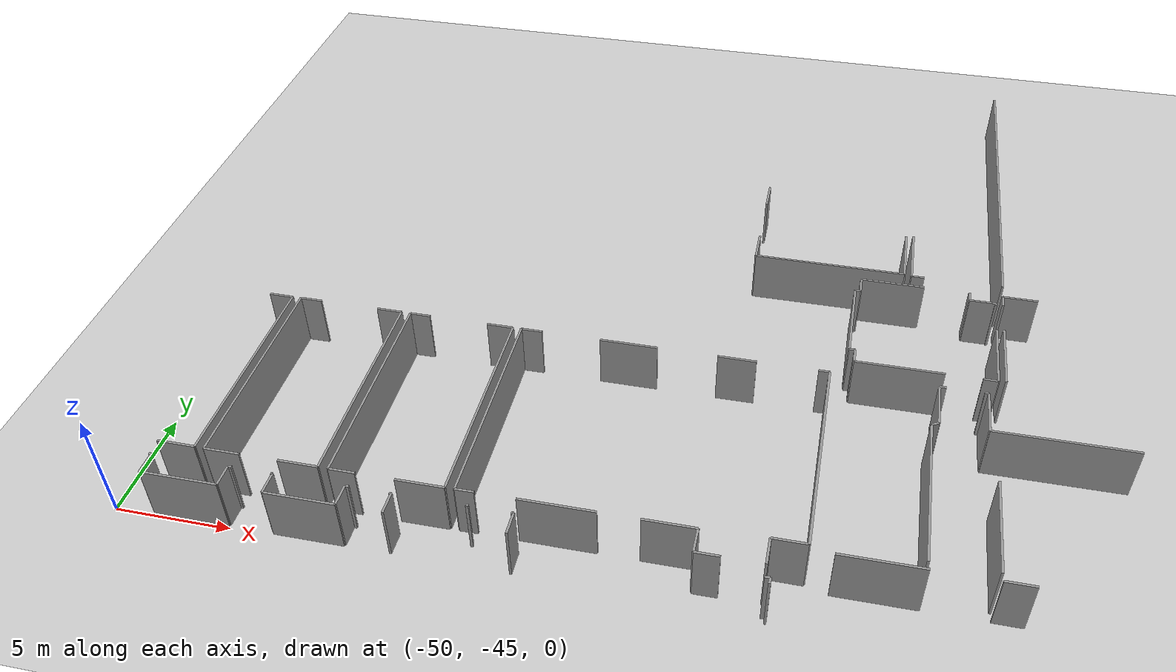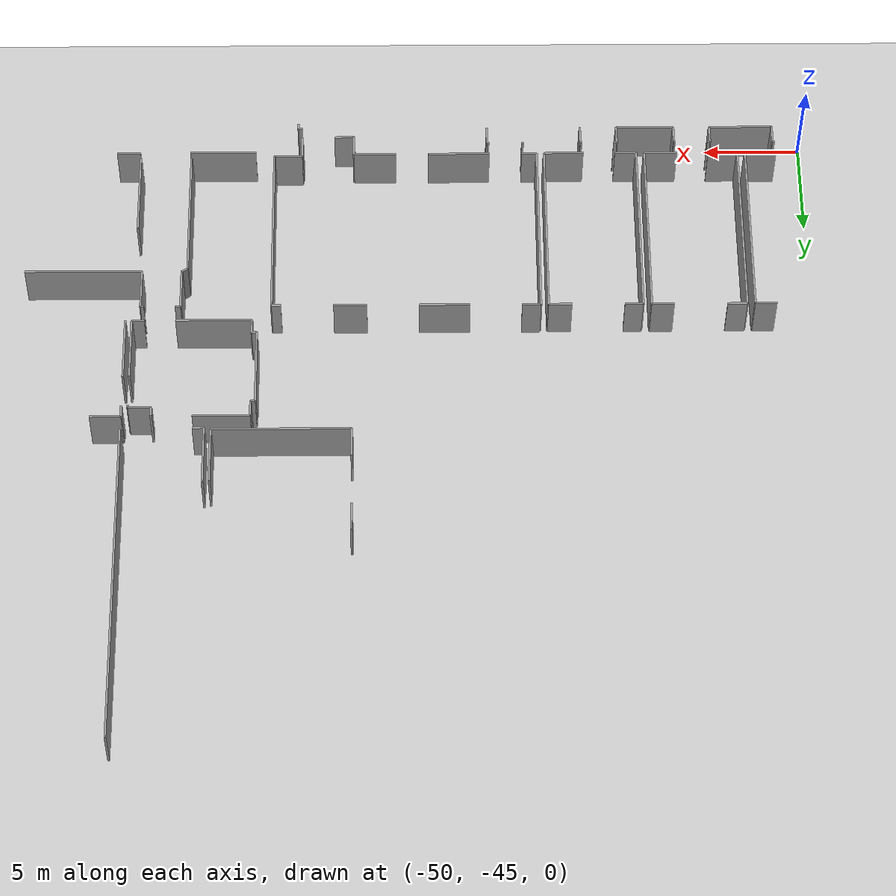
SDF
<sdf version="1.6">
 <world name="default">
  <model name="ground_plane">
   <static>1</static>
   <link name="link">
    <collision name="collision">
     <geometry><plane><normal>0 0 1</normal><size>100 100</size></plane></geometry>
     <surface><friction><ode><mu>100</mu><mu2>50</mu2></ode></friction></surface>
    </collision>
    <visual name="visual">
     <cast_shadows>0</cast_shadows>
     <geometry><plane><normal>0 0 1</normal><size>100 100</size></plane></geometry>
     <material>
      <script><uri>file://media/materials/scripts/gazebo.material</uri><name>Gazebo/Grey</name></script>
     </material>
    </visual>
   </link>
  </model>
  <model name="0510045926_A-40">
   <static>1</static>
   <link name="Wall_1076">
    <collision name="Wall_1076_Collision">
     <geometry><box><size>1.58367336578 0.1 2.5</size></box></geometry>
     <pose>0.791836682891 0 1.25 0 0 0</pose>
    </collision>
    <visual name="Wall_1076_Visual">
     <pose>0.791836682891 0 1.25 0 0 0</pose>
     <geometry><box><size>1.58367336578 0.1 2.5</size></box></geometry>
     <material>
      <script><uri>file://media/materials/scripts/gazebo.material</uri><name>Gazebo/Grey</name></script>
      <ambient>1 1 1 1</ambient>
     </material>
    </visual>
    <pose>107.652246753 -127.228241625 0 0 0 1.57079632679</pose>
   </link>
   <link name="Wall_1077">
    <collision name="Wall_1077_Collision">
     <geometry><box><size>1.52681444064 0.1 2.5</size></box></geometry>
     <pose>0.763407220322 0 1.25 0 0 0</pose>
    </collision>
    <visual name="Wall_1077_Visual">
     <pose>0.763407220322 0 1.25 0 0 0</pose>
     <geometry><box><size>1.52681444064 0.1 2.5</size></box></geometry>
     <material>
      <script><uri>file://media/materials/scripts/gazebo.material</uri><name>Gazebo/Grey</name></script>
      <ambient>1 1 1 1</ambient>
     </material>
    </visual>
    <pose>107.652246753 -122.896809935 0 0 0 1.57079632679</pose>
   </link>
   <link name="Wall_1080">
    <collision name="Wall_1080_Collision">
     <geometry><box><size>2.99524694923 0.1 2.5</size></box></geometry>
     <pose>1.49762347461 0 1.25 0 0 0</pose>
    </collision>
    <visual name="Wall_1080_Visual">
     <pose>1.49762347461 0 1.25 0 0 0</pose>
     <geometry><box><size>2.99524694923 0.1 2.5</size></box></geometry>
     <material>
      <script><uri>file://media/materials/scripts/gazebo.material</uri><name>Gazebo/Grey</name></script>
      <ambient>1 1 1 1</ambient>
     </material>
    </visual>
    <pose>114.702245801 -124.222333627 0 0 0 -1.57079632679</pose>
   </link>
   <link name="Wall_1081">
    <collision name="Wall_1081_Collision">
     <geometry><box><size>7.05000710897 0.1 2.5</size></box></geometry>
     <pose>3.52500355448 0 1.25 0 0 0</pose>
    </collision>
    <visual name="Wall_1081_Visual">
     <pose>3.52500355448 0 1.25 0 0 0</pose>
     <geometry><box><size>7.05000710897 0.1 2.5</size></box></geometry>
     <material>
      <script><uri>file://media/materials/scripts/gazebo.material</uri><name>Gazebo/Grey</name></script>
      <ambient>1 1 1 1</ambient>
     </material>
    </visual>
    <pose>114.702245801 -127.217580577 0 0 0 -3.14008044908</pose>
   </link>
   <link name="Wall_1127">
    <collision name="Wall_1127_Collision">
     <geometry><box><size>0.589149844844 0.1 2.5</size></box></geometry>
     <pose>0.294574922422 0 1.25 0 0 0</pose>
    </collision>
    <visual name="Wall_1127_Visual">
     <pose>0.294574922422 0 1.25 0 0 0</pose>
     <geometry><box><size>0.589149844844 0.1 2.5</size></box></geometry>
     <material>
      <script><uri>file://media/materials/scripts/gazebo.material</uri><name>Gazebo/Grey</name></script>
      <ambient>1 1 1 1</ambient>
     </material>
    </visual>
    <pose>115.628995513 -127.302107461 0 0 0 3.14159265359</pose>
   </link>
   <link name="Wall_1128">
    <collision name="Wall_1128_Collision">
     <geometry><box><size>3.15719335207 0.1 2.5</size></box></geometry>
     <pose>1.57859667604 0 1.25 0 0 0</pose>
    </collision>
    <visual name="Wall_1128_Visual">
     <pose>1.57859667604 0 1.25 0 0 0</pose>
     <geometry><box><size>3.15719335207 0.1 2.5</size></box></geometry>
     <material>
      <script><uri>file://media/materials/scripts/gazebo.material</uri><name>Gazebo/Grey</name></script>
      <ambient>1 1 1 1</ambient>
     </material>
    </visual>
    <pose>115.039845669 -127.302107461 0 0 0 1.57079632679</pose>
   </link>
   <link name="Wall_1136">
    <collision name="Wall_1136_Collision">
     <geometry><box><size>3.42575023956 0.1 2.5</size></box></geometry>
     <pose>1.71287511978 0 1.25 0 0 0</pose>
    </collision>
    <visual name="Wall_1136_Visual">
     <pose>1.71287511978 0 1.25 0 0 0</pose>
     <geometry><box><size>3.42575023956 0.1 2.5</size></box></geometry>
     <material>
      <script><uri>file://media/materials/scripts/gazebo.material</uri><name>Gazebo/Grey</name></script>
      <ambient>1 1 1 1</ambient>
     </material>
    </visual>
    <pose>119.211615466 -133.77742523 0 0 0 1.57079632679</pose>
   </link>
   <link name="Wall_1137">
    <collision name="Wall_1137_Collision">
     <geometry><box><size>0.63331704562 0.1 2.5</size></box></geometry>
     <pose>0.31665852281 0 1.25 0 0 0</pose>
    </collision>
    <visual name="Wall_1137_Visual">
     <pose>0.31665852281 0 1.25 0 0 0</pose>
     <geometry><box><size>0.63331704562 0.1 2.5</size></box></geometry>
     <material>
      <script><uri>file://media/materials/scripts/gazebo.material</uri><name>Gazebo/Grey</name></script>
      <ambient>1 1 1 1</ambient>
     </material>
    </visual>
    <pose>119.211615466 -128.630423332 0 0 0 1.57079632679</pose>
   </link>
   <link name="Wall_1138">
    <collision name="Wall_1138_Collision">
     <geometry><box><size>1.58215035886 0.1 2.5</size></box></geometry>
     <pose>0.791075179429 0 1.25 0 0 0</pose>
    </collision>
    <visual name="Wall_1138_Visual">
     <pose>0.791075179429 0 1.25 0 0 0</pose>
     <geometry><box><size>1.58215035886 0.1 2.5</size></box></geometry>
     <material>
      <script><uri>file://media/materials/scripts/gazebo.material</uri><name>Gazebo/Grey</name></script>
      <ambient>1 1 1 1</ambient>
     </material>
    </visual>
    <pose>119.211615466 -127.997106287 0 0 0 0.0</pose>
   </link>
   <link name="Wall_1143">
    <collision name="Wall_1143_Collision">
     <geometry><box><size>0.755157599487 0.1 2.5</size></box></geometry>
     <pose>0.377578799744 0 1.25 0 0 0</pose>
    </collision>
    <visual name="Wall_1143_Visual">
     <pose>0.377578799744 0 1.25 0 0 0</pose>
     <geometry><box><size>0.755157599487 0.1 2.5</size></box></geometry>
     <material>
      <script><uri>file://media/materials/scripts/gazebo.material</uri><name>Gazebo/Grey</name></script>
      <ambient>1 1 1 1</ambient>
     </material>
    </visual>
    <pose>112.765742498 -133.783771092 0 0 0 1.57079632679</pose>
   </link>
   <link name="Wall_1144">
    <collision name="Wall_1144_Collision">
     <geometry><box><size>0.257134335557 0.1 2.5</size></box></geometry>
     <pose>0.128567167778 0 1.25 0 0 0</pose>
    </collision>
    <visual name="Wall_1144_Visual">
     <pose>0.128567167778 0 1.25 0 0 0</pose>
     <geometry><box><size>0.257134335557 0.1 2.5</size></box></geometry>
     <material>
      <script><uri>file://media/materials/scripts/gazebo.material</uri><name>Gazebo/Grey</name></script>
      <ambient>1 1 1 1</ambient>
     </material>
    </visual>
    <pose>112.765742498 -133.028613493 0 0 0 3.14159265359</pose>
   </link>
   <link name="Wall_1145">
    <collision name="Wall_1145_Collision">
     <geometry><box><size>4.11288019647 0.1 2.5</size></box></geometry>
     <pose>2.05644009823 0 1.25 0 0 0</pose>
    </collision>
    <visual name="Wall_1145_Visual">
     <pose>2.05644009823 0 1.25 0 0 0</pose>
     <geometry><box><size>4.11288019647 0.1 2.5</size></box></geometry>
     <material>
      <script><uri>file://media/materials/scripts/gazebo.material</uri><name>Gazebo/Grey</name></script>
      <ambient>1 1 1 1</ambient>
     </material>
    </visual>
    <pose>112.508608162 -133.028613493 0 0 0 1.57079632679</pose>
   </link>
   <link name="Wall_1146">
    <collision name="Wall_1146_Collision">
     <geometry><box><size>0.234289231706 0.1 2.5</size></box></geometry>
     <pose>0.117144615853 0 1.25 0 0 0</pose>
    </collision>
    <visual name="Wall_1146_Visual">
     <pose>0.117144615853 0 1.25 0 0 0</pose>
     <geometry><box><size>0.234289231706 0.1 2.5</size></box></geometry>
     <material>
      <script><uri>file://media/materials/scripts/gazebo.material</uri><name>Gazebo/Grey</name></script>
      <ambient>1 1 1 1</ambient>
     </material>
    </visual>
    <pose>112.508608162 -128.915733296 0 0 0 0.0</pose>
   </link>
   <link name="Wall_1147">
    <collision name="Wall_1147_Collision">
     <geometry><box><size>0.890959050151 0.1 2.5</size></box></geometry>
     <pose>0.445479525076 0 1.25 0 0 0</pose>
    </collision>
    <visual name="Wall_1147_Visual">
     <pose>0.445479525076 0 1.25 0 0 0</pose>
     <geometry><box><size>0.890959050151 0.1 2.5</size></box></geometry>
     <material>
      <script><uri>file://media/materials/scripts/gazebo.material</uri><name>Gazebo/Grey</name></script>
      <ambient>1 1 1 1</ambient>
     </material>
    </visual>
    <pose>112.742897394 -128.915733296 0 0 0 1.57079632679</pose>
   </link>
   <link name="Wall_1148">
    <collision name="Wall_1148_Collision">
     <geometry><box><size>2.91122773396 0.1 2.5</size></box></geometry>
     <pose>1.45561386698 0 1.25 0 0 0</pose>
    </collision>
    <visual name="Wall_1148_Visual">
     <pose>1.45561386698 0 1.25 0 0 0</pose>
     <geometry><box><size>2.91122773396 0.1 2.5</size></box></geometry>
     <material>
      <script><uri>file://media/materials/scripts/gazebo.material</uri><name>Gazebo/Grey</name></script>
      <ambient>1 1 1 1</ambient>
     </material>
    </visual>
    <pose>112.742897394 -128.024774246 0 0 0 0.0</pose>
   </link>
   <link name="Wall_1149">
    <collision name="Wall_1149_Collision">
     <geometry><box><size>0.51909152637 0.1 2.5</size></box></geometry>
     <pose>0.259545763185 0 1.25 0 0 0</pose>
    </collision>
    <visual name="Wall_1149_Visual">
     <pose>0.259545763185 0 1.25 0 0 0</pose>
     <geometry><box><size>0.51909152637 0.1 2.5</size></box></geometry>
     <material>
      <script><uri>file://media/materials/scripts/gazebo.material</uri><name>Gazebo/Grey</name></script>
      <ambient>1 1 1 1</ambient>
     </material>
    </visual>
    <pose>117.711961316 -128.024774246 0 0 0 -1.57079632679</pose>
   </link>
   <link name="Wall_1150">
    <collision name="Wall_1150_Collision">
     <geometry><box><size>1.17652284828 0.1 2.5</size></box></geometry>
     <pose>0.588261424138 0 1.25 0 0 0</pose>
    </collision>
    <visual name="Wall_1150_Visual">
     <pose>0.588261424138 0 1.25 0 0 0</pose>
     <geometry><box><size>1.17652284828 0.1 2.5</size></box></geometry>
     <material>
      <script><uri>file://media/materials/scripts/gazebo.material</uri><name>Gazebo/Grey</name></script>
      <ambient>1 1 1 1</ambient>
     </material>
    </visual>
    <pose>117.711961316 -128.543865772 0 0 0 0.0</pose>
   </link>
   <link name="Wall_1151">
    <collision name="Wall_1151_Collision">
     <geometry><box><size>0.12793258156 0.1 2.5</size></box></geometry>
     <pose>0.0639662907801 0 1.25 0 0 0</pose>
    </collision>
    <visual name="Wall_1151_Visual">
     <pose>0.0639662907801 0 1.25 0 0 0</pose>
     <geometry><box><size>0.12793258156 0.1 2.5</size></box></geometry>
     <material>
      <script><uri>file://media/materials/scripts/gazebo.material</uri><name>Gazebo/Grey</name></script>
      <ambient>1 1 1 1</ambient>
     </material>
    </visual>
    <pose>118.888484164 -128.543865772 0 0 0 -1.57079632679</pose>
   </link>
   <link name="Wall_1152">
    <collision name="Wall_1152_Collision">
     <geometry><box><size>3.38285221122 0.1 2.5</size></box></geometry>
     <pose>1.69142610561 0 1.25 0 0 0</pose>
    </collision>
    <visual name="Wall_1152_Visual">
     <pose>1.69142610561 0 1.25 0 0 0</pose>
     <geometry><box><size>3.38285221122 0.1 2.5</size></box></geometry>
     <material>
      <script><uri>file://media/materials/scripts/gazebo.material</uri><name>Gazebo/Grey</name></script>
      <ambient>1 1 1 1</ambient>
     </material>
    </visual>
    <pose>118.888484164 -130.403457226 0 0 0 -1.57079632679</pose>
   </link>
   <link name="Wall_1153">
    <collision name="Wall_1153_Collision">
     <geometry><box><size>0.64067824575 0.1 2.5</size></box></geometry>
     <pose>0.320339122875 0 1.25 0 0 0</pose>
    </collision>
    <visual name="Wall_1153_Visual">
     <pose>0.320339122875 0 1.25 0 0 0</pose>
     <geometry><box><size>0.64067824575 0.1 2.5</size></box></geometry>
     <material>
      <script><uri>file://media/materials/scripts/gazebo.material</uri><name>Gazebo/Grey</name></script>
      <ambient>1 1 1 1</ambient>
     </material>
    </visual>
    <pose>118.888484164 -133.786309437 0 0 0 3.14159265359</pose>
   </link>
   <link name="Wall_1154">
    <collision name="Wall_1154_Collision">
     <geometry><box><size>3.89432953022 0.1 2.5</size></box></geometry>
     <pose>1.94716476511 0 1.25 0 0 0</pose>
    </collision>
    <visual name="Wall_1154_Visual">
     <pose>1.94716476511 0 1.25 0 0 0</pose>
     <geometry><box><size>3.89432953022 0.1 2.5</size></box></geometry>
     <material>
      <script><uri>file://media/materials/scripts/gazebo.material</uri><name>Gazebo/Grey</name></script>
      <ambient>1 1 1 1</ambient>
     </material>
    </visual>
    <pose>116.660071201 -133.786309437 0 0 0 3.14094084818</pose>
   </link>
   <link name="Wall_1155">
    <collision name="Wall_1155_Collision">
     <geometry><box><size>17.2064245509 0.1 2.5</size></box></geometry>
     <pose>8.60321227544 0 1.25 0 0 0</pose>
    </collision>
    <visual name="Wall_1155_Visual">
     <pose>8.60321227544 0 1.25 0 0 0</pose>
     <geometry><box><size>17.2064245509 0.1 2.5</size></box></geometry>
     <material>
      <script><uri>file://media/materials/scripts/gazebo.material</uri><name>Gazebo/Grey</name></script>
      <ambient>1 1 1 1</ambient>
     </material>
    </visual>
    <pose>119.226591701 -127.236618163 0 0 0 1.57079632679</pose>
   </link>
   <link name="Wall_1380">
    <collision name="Wall_1380_Collision">
     <geometry><box><size>1.1064645298 0.1 2.5</size></box></geometry>
     <pose>0.553232264902 0 1.25 0 0 0</pose>
    </collision>
    <visual name="Wall_1380_Visual">
     <pose>0.553232264902 0 1.25 0 0 0</pose>
     <geometry><box><size>1.1064645298 0.1 2.5</size></box></geometry>
     <material>
      <script><uri>file://media/materials/scripts/gazebo.material</uri><name>Gazebo/Grey</name></script>
      <ambient>1 1 1 1</ambient>
     </material>
    </visual>
    <pose>85.9676741781 -134.681076004 0 0 0 0.0</pose>
   </link>
   <link name="Wall_1381">
    <collision name="Wall_1381_Collision">
     <geometry><box><size>9.59012076176 0.1 2.5</size></box></geometry>
     <pose>4.79506038088 0 1.25 0 0 0</pose>
    </collision>
    <visual name="Wall_1381_Visual">
     <pose>4.79506038088 0 1.25 0 0 0</pose>
     <geometry><box><size>9.59012076176 0.1 2.5</size></box></geometry>
     <material>
      <script><uri>file://media/materials/scripts/gazebo.material</uri><name>Gazebo/Grey</name></script>
      <ambient>1 1 1 1</ambient>
     </material>
    </visual>
    <pose>87.0741387079 -134.681076004 0 0 0 -1.57079632679</pose>
   </link>
   <link name="Wall_1382">
    <collision name="Wall_1382_Collision">
     <geometry><box><size>1.64180146336 0.1 2.5</size></box></geometry>
     <pose>0.820900731678 0 1.25 0 0 0</pose>
    </collision>
    <visual name="Wall_1382_Visual">
     <pose>0.820900731678 0 1.25 0 0 0</pose>
     <geometry><box><size>1.64180146336 0.1 2.5</size></box></geometry>
     <material>
      <script><uri>file://media/materials/scripts/gazebo.material</uri><name>Gazebo/Grey</name></script>
      <ambient>1 1 1 1</ambient>
     </material>
    </visual>
    <pose>87.0741387079 -144.271196766 0 0 0 3.14159265359</pose>
   </link>
   <link name="Wall_1384">
    <collision name="Wall_1384_Collision">
     <geometry><box><size>9.61423503804 0.1 2.5</size></box></geometry>
     <pose>4.80711751902 0 1.25 0 0 0</pose>
    </collision>
    <visual name="Wall_1384_Visual">
     <pose>4.80711751902 0 1.25 0 0 0</pose>
     <geometry><box><size>9.61423503804 0.1 2.5</size></box></geometry>
     <material>
      <script><uri>file://media/materials/scripts/gazebo.material</uri><name>Gazebo/Grey</name></script>
      <ambient>1 1 1 1</ambient>
     </material>
    </visual>
    <pose>87.478497046 -144.287696008 0 0 0 1.57079632679</pose>
   </link>
   <link name="Wall_1385">
    <collision name="Wall_1385_Collision">
     <geometry><box><size>1.01305343851 0.1 2.5</size></box></geometry>
     <pose>0.506526719253 0 1.25 0 0 0</pose>
    </collision>
    <visual name="Wall_1385_Visual">
     <pose>0.506526719253 0 1.25 0 0 0</pose>
     <geometry><box><size>1.01305343851 0.1 2.5</size></box></geometry>
     <material>
      <script><uri>file://media/materials/scripts/gazebo.material</uri><name>Gazebo/Grey</name></script>
      <ambient>1 1 1 1</ambient>
     </material>
    </visual>
    <pose>87.478497046 -134.67346097 0 0 0 0.0</pose>
   </link>
   <link name="Wall_1386">
    <collision name="Wall_1386_Collision">
     <geometry><box><size>1.15926210315 0.1 2.5</size></box></geometry>
     <pose>0.579631051573 0 1.25 0 0 0</pose>
    </collision>
    <visual name="Wall_1386_Visual">
     <pose>0.579631051573 0 1.25 0 0 0</pose>
     <geometry><box><size>1.15926210315 0.1 2.5</size></box></geometry>
     <material>
      <script><uri>file://media/materials/scripts/gazebo.material</uri><name>Gazebo/Grey</name></script>
      <ambient>1 1 1 1</ambient>
     </material>
    </visual>
    <pose>91.2080871668 -134.67346097 0 0 0 0.0</pose>
   </link>
   <link name="Wall_1387">
    <collision name="Wall_1387_Collision">
     <geometry><box><size>9.61423503804 0.1 2.5</size></box></geometry>
     <pose>4.80711751902 0 1.25 0 0 0</pose>
    </collision>
    <visual name="Wall_1387_Visual">
     <pose>4.80711751902 0 1.25 0 0 0</pose>
     <geometry><box><size>9.61423503804 0.1 2.5</size></box></geometry>
     <material>
      <script><uri>file://media/materials/scripts/gazebo.material</uri><name>Gazebo/Grey</name></script>
      <ambient>1 1 1 1</ambient>
     </material>
    </visual>
    <pose>92.3673492699 -134.67346097 0 0 0 -1.57079632679</pose>
   </link>
   <link name="Wall_1388">
    <collision name="Wall_1388_Collision">
     <geometry><box><size>1.71617496811 0.1 2.5</size></box></geometry>
     <pose>0.858087484056 0 1.25 0 0 0</pose>
    </collision>
    <visual name="Wall_1388_Visual">
     <pose>0.858087484056 0 1.25 0 0 0</pose>
     <geometry><box><size>1.71617496811 0.1 2.5</size></box></geometry>
     <material>
      <script><uri>file://media/materials/scripts/gazebo.material</uri><name>Gazebo/Grey</name></script>
      <ambient>1 1 1 1</ambient>
     </material>
    </visual>
    <pose>92.3673492699 -144.287696008 0 0 0 3.14159265359</pose>
   </link>
   <link name="Wall_1389">
    <collision name="Wall_1389_Collision">
     <geometry><box><size>1.53036812347 0.1 2.5</size></box></geometry>
     <pose>0.765184061733 0 1.25 0 0 0</pose>
    </collision>
    <visual name="Wall_1389_Visual">
     <pose>0.765184061733 0 1.25 0 0 0</pose>
     <geometry><box><size>1.53036812347 0.1 2.5</size></box></geometry>
     <material>
      <script><uri>file://media/materials/scripts/gazebo.material</uri><name>Gazebo/Grey</name></script>
      <ambient>1 1 1 1</ambient>
     </material>
    </visual>
    <pose>89.0088651695 -144.287696008 0 0 0 3.14159265359</pose>
   </link>
   <link name="Wall_1390">
    <collision name="Wall_1390_Collision">
     <geometry><box><size>9.61525037599 0.1 2.5</size></box></geometry>
     <pose>4.807625188 0 1.25 0 0 0</pose>
    </collision>
    <visual name="Wall_1390_Visual">
     <pose>4.807625188 0 1.25 0 0 0</pose>
     <geometry><box><size>9.61525037599 0.1 2.5</size></box></geometry>
     <material>
      <script><uri>file://media/materials/scripts/gazebo.material</uri><name>Gazebo/Grey</name></script>
      <ambient>1 1 1 1</ambient>
     </material>
    </visual>
    <pose>92.7955680499 -144.294549539 0 0 0 1.57079632679</pose>
   </link>
   <link name="Wall_1391">
    <collision name="Wall_1391_Collision">
     <geometry><box><size>0.941472113109 0.1 2.5</size></box></geometry>
     <pose>0.470736056554 0 1.25 0 0 0</pose>
    </collision>
    <visual name="Wall_1391_Visual">
     <pose>0.470736056554 0 1.25 0 0 0</pose>
     <geometry><box><size>0.941472113109 0.1 2.5</size></box></geometry>
     <material>
      <script><uri>file://media/materials/scripts/gazebo.material</uri><name>Gazebo/Grey</name></script>
      <ambient>1 1 1 1</ambient>
     </material>
    </visual>
    <pose>92.7955680499 -134.679299163 0 0 0 0.0</pose>
   </link>
   <link name="Wall_1392">
    <collision name="Wall_1392_Collision">
     <geometry><box><size>1.19556043482 0.1 2.5</size></box></geometry>
     <pose>0.597780217409 0 1.25 0 0 0</pose>
    </collision>
    <visual name="Wall_1392_Visual">
     <pose>0.597780217409 0 1.25 0 0 0</pose>
     <geometry><box><size>1.19556043482 0.1 2.5</size></box></geometry>
     <material>
      <script><uri>file://media/materials/scripts/gazebo.material</uri><name>Gazebo/Grey</name></script>
      <ambient>1 1 1 1</ambient>
     </material>
    </visual>
    <pose>96.438346776 -134.679299163 0 0 0 0.0</pose>
   </link>
   <link name="Wall_1393">
    <collision name="Wall_1393_Collision">
     <geometry><box><size>9.61499654151 0.1 2.5</size></box></geometry>
     <pose>4.80749827075 0 1.25 0 0 0</pose>
    </collision>
    <visual name="Wall_1393_Visual">
     <pose>4.80749827075 0 1.25 0 0 0</pose>
     <geometry><box><size>9.61499654151 0.1 2.5</size></box></geometry>
     <material>
      <script><uri>file://media/materials/scripts/gazebo.material</uri><name>Gazebo/Grey</name></script>
      <ambient>1 1 1 1</ambient>
     </material>
    </visual>
    <pose>97.6339072108 -134.679299163 0 0 0 -1.57079632679</pose>
   </link>
   <link name="Wall_1394">
    <collision name="Wall_1394_Collision">
     <geometry><box><size>2.06418205009 0.1 2.5</size></box></geometry>
     <pose>1.03209102505 0 1.25 0 0 0</pose>
    </collision>
    <visual name="Wall_1394_Visual">
     <pose>1.03209102505 0 1.25 0 0 0</pose>
     <geometry><box><size>2.06418205009 0.1 2.5</size></box></geometry>
     <material>
      <script><uri>file://media/materials/scripts/gazebo.material</uri><name>Gazebo/Grey</name></script>
      <ambient>1 1 1 1</ambient>
     </material>
    </visual>
    <pose>97.6339072108 -144.294295704 0 0 0 3.14159265359</pose>
   </link>
   <link name="Wall_1395">
    <collision name="Wall_1395_Collision">
     <geometry><box><size>1.11864861399 0.1 2.5</size></box></geometry>
     <pose>0.559324306995 0 1.25 0 0 0</pose>
    </collision>
    <visual name="Wall_1395_Visual">
     <pose>0.559324306995 0 1.25 0 0 0</pose>
     <geometry><box><size>1.11864861399 0.1 2.5</size></box></geometry>
     <material>
      <script><uri>file://media/materials/scripts/gazebo.material</uri><name>Gazebo/Grey</name></script>
      <ambient>1 1 1 1</ambient>
     </material>
    </visual>
    <pose>93.914216635 -144.294295704 0 0 0 -3.14136574186</pose>
   </link>
   <link name="Wall_1396">
    <collision name="Wall_1396_Collision">
     <geometry><box><size>9.60788917586 0.1 2.5</size></box></geometry>
     <pose>4.80394458793 0 1.25 0 0 0</pose>
    </collision>
    <visual name="Wall_1396_Visual">
     <pose>4.80394458793 0 1.25 0 0 0</pose>
     <geometry><box><size>9.60788917586 0.1 2.5</size></box></geometry>
     <material>
      <script><uri>file://media/materials/scripts/gazebo.material</uri><name>Gazebo/Grey</name></script>
      <ambient>1 1 1 1</ambient>
     </material>
    </visual>
    <pose>98.0232893142 -144.283380822 0 0 0 1.57079632679</pose>
   </link>
   <link name="Wall_1397">
    <collision name="Wall_1397_Collision">
     <geometry><box><size>0.959748196189 0.1 2.5</size></box></geometry>
     <pose>0.479874098094 0 1.25 0 0 0</pose>
    </collision>
    <visual name="Wall_1397_Visual">
     <pose>0.479874098094 0 1.25 0 0 0</pose>
     <geometry><box><size>0.959748196189 0.1 2.5</size></box></geometry>
     <material>
      <script><uri>file://media/materials/scripts/gazebo.material</uri><name>Gazebo/Grey</name></script>
      <ambient>1 1 1 1</ambient>
     </material>
    </visual>
    <pose>98.0232893142 -134.675491646 0 0 0 0.0</pose>
   </link>
   <link name="Wall_1398">
    <collision name="Wall_1398_Collision">
     <geometry><box><size>2.59748830775 0.1 2.5</size></box></geometry>
     <pose>1.29874415387 0 1.25 0 0 0</pose>
    </collision>
    <visual name="Wall_1398_Visual">
     <pose>1.29874415387 0 1.25 0 0 0</pose>
     <geometry><box><size>2.59748830775 0.1 2.5</size></box></geometry>
     <material>
      <script><uri>file://media/materials/scripts/gazebo.material</uri><name>Gazebo/Grey</name></script>
      <ambient>1 1 1 1</ambient>
     </material>
    </visual>
    <pose>101.643476771 -134.675491646 0 0 0 0.0</pose>
   </link>
   <link name="Wall_1399">
    <collision name="Wall_1399_Collision">
     <geometry><box><size>1.70957527144 0.1 2.5</size></box></geometry>
     <pose>0.854787635722 0 1.25 0 0 0</pose>
    </collision>
    <visual name="Wall_1399_Visual">
     <pose>0.854787635722 0 1.25 0 0 0</pose>
     <geometry><box><size>1.70957527144 0.1 2.5</size></box></geometry>
     <material>
      <script><uri>file://media/materials/scripts/gazebo.material</uri><name>Gazebo/Grey</name></script>
      <ambient>1 1 1 1</ambient>
     </material>
    </visual>
    <pose>106.913842229 -134.675491646 0 0 0 0.0</pose>
   </link>
   <link name="Wall_1400">
    <collision name="Wall_1400_Collision">
     <geometry><box><size>0.483554698159 0.1 2.5</size></box></geometry>
     <pose>0.24177734908 0 1.25 0 0 0</pose>
    </collision>
    <visual name="Wall_1400_Visual">
     <pose>0.24177734908 0 1.25 0 0 0</pose>
     <geometry><box><size>0.483554698159 0.1 2.5</size></box></geometry>
     <material>
      <script><uri>file://media/materials/scripts/gazebo.material</uri><name>Gazebo/Grey</name></script>
      <ambient>1 1 1 1</ambient>
     </material>
    </visual>
    <pose>111.307463369 -134.675491646 0 0 0 0.0</pose>
   </link>
   <link name="Wall_1401">
    <collision name="Wall_1401_Collision">
     <geometry><box><size>9.48884080136 0.1 2.5</size></box></geometry>
     <pose>4.74442040068 0 1.25 0 0 0</pose>
    </collision>
    <visual name="Wall_1401_Visual">
     <pose>4.74442040068 0 1.25 0 0 0</pose>
     <geometry><box><size>9.48884080136 0.1 2.5</size></box></geometry>
     <material>
      <script><uri>file://media/materials/scripts/gazebo.material</uri><name>Gazebo/Grey</name></script>
      <ambient>1 1 1 1</ambient>
     </material>
    </visual>
    <pose>111.791018067 -134.675491646 0 0 0 -1.57079632679</pose>
   </link>
   <link name="Wall_1402">
    <collision name="Wall_1402_Collision">
     <geometry><box><size>1.45650228768 0.1 2.5</size></box></geometry>
     <pose>0.728251143842 0 1.25 0 0 0</pose>
    </collision>
    <visual name="Wall_1402_Visual">
     <pose>0.728251143842 0 1.25 0 0 0</pose>
     <geometry><box><size>1.45650228768 0.1 2.5</size></box></geometry>
     <material>
      <script><uri>file://media/materials/scripts/gazebo.material</uri><name>Gazebo/Grey</name></script>
      <ambient>1 1 1 1</ambient>
     </material>
    </visual>
    <pose>111.791018067 -144.164332447 0 0 0 3.14159265359</pose>
   </link>
   <link name="Wall_1403">
    <collision name="Wall_1403_Collision">
     <geometry><box><size>1.22678207675 0.1 2.5</size></box></geometry>
     <pose>0.613391038373 0 1.25 0 0 0</pose>
    </collision>
    <visual name="Wall_1403_Visual">
     <pose>0.613391038373 0 1.25 0 0 0</pose>
     <geometry><box><size>1.22678207675 0.1 2.5</size></box></geometry>
     <material>
      <script><uri>file://media/materials/scripts/gazebo.material</uri><name>Gazebo/Grey</name></script>
      <ambient>1 1 1 1</ambient>
     </material>
    </visual>
    <pose>110.334515779 -144.164332447 0 0 0 -1.57079632679</pose>
   </link>
   <link name="Wall_1404">
    <collision name="Wall_1404_Collision">
     <geometry><box><size>1.02472982492 0.1 2.5</size></box></geometry>
     <pose>0.512364912459 0 1.25 0 0 0</pose>
    </collision>
    <visual name="Wall_1404_Visual">
     <pose>0.512364912459 0 1.25 0 0 0</pose>
     <geometry><box><size>1.02472982492 0.1 2.5</size></box></geometry>
     <material>
      <script><uri>file://media/materials/scripts/gazebo.material</uri><name>Gazebo/Grey</name></script>
      <ambient>1 1 1 1</ambient>
     </material>
    </visual>
    <pose>108.645501101 -145.391114524 0 0 0 3.14159265359</pose>
   </link>
   <link name="Wall_1405">
    <collision name="Wall_1405_Collision">
     <geometry><box><size>1.11585640583 0.1 2.5</size></box></geometry>
     <pose>0.557928202915 0 1.25 0 0 0</pose>
    </collision>
    <visual name="Wall_1405_Visual">
     <pose>0.557928202915 0 1.25 0 0 0</pose>
     <geometry><box><size>1.11585640583 0.1 2.5</size></box></geometry>
     <material>
      <script><uri>file://media/materials/scripts/gazebo.material</uri><name>Gazebo/Grey</name></script>
      <ambient>1 1 1 1</ambient>
     </material>
    </visual>
    <pose>107.620771276 -145.391114524 0 0 0 1.57079632679</pose>
   </link>
   <link name="Wall_1406">
    <collision name="Wall_1406_Collision">
     <geometry><box><size>2.21089838371 0.1 2.5</size></box></geometry>
     <pose>1.10544919185 0 1.25 0 0 0</pose>
    </collision>
    <visual name="Wall_1406_Visual">
     <pose>1.10544919185 0 1.25 0 0 0</pose>
     <geometry><box><size>2.21089838371 0.1 2.5</size></box></geometry>
     <material>
      <script><uri>file://media/materials/scripts/gazebo.material</uri><name>Gazebo/Grey</name></script>
      <ambient>1 1 1 1</ambient>
     </material>
    </visual>
    <pose>107.620771276 -144.275258118 0 0 0 3.14159265359</pose>
   </link>
   <link name="Wall_1407">
    <collision name="Wall_1407_Collision">
     <geometry><box><size>3.19806070452 0.1 2.5</size></box></geometry>
     <pose>1.59903035226 0 1.25 0 0 0</pose>
    </collision>
    <visual name="Wall_1407_Visual">
     <pose>1.59903035226 0 1.25 0 0 0</pose>
     <geometry><box><size>3.19806070452 0.1 2.5</size></box></geometry>
     <material>
      <script><uri>file://media/materials/scripts/gazebo.material</uri><name>Gazebo/Grey</name></script>
      <ambient>1 1 1 1</ambient>
     </material>
    </visual>
    <pose>103.702328297 -144.275258118 0 0 0 3.14159265359</pose>
   </link>
   <link name="Wall_1408">
    <collision name="Wall_1408_Collision">
     <geometry><box><size>0.788197937836 0.1 2.5</size></box></geometry>
     <pose>0.394098968918 0 1.25 0 0 0</pose>
    </collision>
    <visual name="Wall_1408_Visual">
     <pose>0.394098968918 0 1.25 0 0 0</pose>
     <geometry><box><size>0.788197937836 0.1 2.5</size></box></geometry>
     <material>
      <script><uri>file://media/materials/scripts/gazebo.material</uri><name>Gazebo/Grey</name></script>
      <ambient>1 1 1 1</ambient>
     </material>
    </visual>
    <pose>98.811445397 -144.275258118 0 0 0 -3.13128706031</pose>
   </link>
   <link name="Wall_1442">
    <collision name="Wall_1442_Collision">
     <geometry><box><size>0.108133491557 0.1 2.5</size></box></geometry>
     <pose>0.0540667457784 0 1.25 0 0 0</pose>
    </collision>
    <visual name="Wall_1442_Visual">
     <pose>0.0540667457784 0 1.25 0 0 0</pose>
     <geometry><box><size>0.108133491557 0.1 2.5</size></box></geometry>
     <material>
      <script><uri>file://media/materials/scripts/gazebo.material</uri><name>Gazebo/Grey</name></script>
      <ambient>1 1 1 1</ambient>
     </material>
    </visual>
    <pose>85.4686355762 -144.995132724 0 0 0 0.0</pose>
   </link>
   <link name="Wall_1443">
    <collision name="Wall_1443_Collision">
     <geometry><box><size>0.961778872086 0.1 2.5</size></box></geometry>
     <pose>0.480889436043 0 1.25 0 0 0</pose>
    </collision>
    <visual name="Wall_1443_Visual">
     <pose>0.480889436043 0 1.25 0 0 0</pose>
     <geometry><box><size>0.961778872086 0.1 2.5</size></box></geometry>
     <material>
      <script><uri>file://media/materials/scripts/gazebo.material</uri><name>Gazebo/Grey</name></script>
      <ambient>1 1 1 1</ambient>
     </material>
    </visual>
    <pose>85.5767690677 -144.995132724 0 0 0 -1.57079632679</pose>
   </link>
   <link name="Wall_1444">
    <collision name="Wall_1444_Collision">
     <geometry><box><size>3.29604081659 0.1 2.5</size></box></geometry>
     <pose>1.64802040829 0 1.25 0 0 0</pose>
    </collision>
    <visual name="Wall_1444_Visual">
     <pose>1.64802040829 0 1.25 0 0 0</pose>
     <geometry><box><size>3.29604081659 0.1 2.5</size></box></geometry>
     <material>
      <script><uri>file://media/materials/scripts/gazebo.material</uri><name>Gazebo/Grey</name></script>
      <ambient>1 1 1 1</ambient>
     </material>
    </visual>
    <pose>85.5767690677 -145.956911596 0 0 0 0.0</pose>
   </link>
   <link name="Wall_1445">
    <collision name="Wall_1445_Collision">
     <geometry><box><size>0.964571051446 0.1 2.5</size></box></geometry>
     <pose>0.482285525723 0 1.25 0 0 0</pose>
    </collision>
    <visual name="Wall_1445_Visual">
     <pose>0.482285525723 0 1.25 0 0 0</pose>
     <geometry><box><size>0.964571051446 0.1 2.5</size></box></geometry>
     <material>
      <script><uri>file://media/materials/scripts/gazebo.material</uri><name>Gazebo/Grey</name></script>
      <ambient>1 1 1 1</ambient>
     </material>
    </visual>
    <pose>88.8728098843 -145.956911596 0 0 0 1.57079632679</pose>
   </link>
   <link name="Wall_1446">
    <collision name="Wall_1446_Collision">
     <geometry><box><size>0.150016181949 0.1 2.5</size></box></geometry>
     <pose>0.0750080909743 0 1.25 0 0 0</pose>
    </collision>
    <visual name="Wall_1446_Visual">
     <pose>0.0750080909743 0 1.25 0 0 0</pose>
     <geometry><box><size>0.150016181949 0.1 2.5</size></box></geometry>
     <material>
      <script><uri>file://media/materials/scripts/gazebo.material</uri><name>Gazebo/Grey</name></script>
      <ambient>1 1 1 1</ambient>
     </material>
    </visual>
    <pose>88.8728098843 -144.992340544 0 0 0 0.0</pose>
   </link>
   <link name="Wall_1447">
    <collision name="Wall_1447_Collision">
     <geometry><box><size>0.0819885393729 0.1 2.5</size></box></geometry>
     <pose>0.0409942696865 0 1.25 0 0 0</pose>
    </collision>
    <visual name="Wall_1447_Visual">
     <pose>0.0409942696865 0 1.25 0 0 0</pose>
     <geometry><box><size>0.0819885393729 0.1 2.5</size></box></geometry>
     <material>
      <script><uri>file://media/materials/scripts/gazebo.material</uri><name>Gazebo/Grey</name></script>
      <ambient>1 1 1 1</ambient>
     </material>
    </visual>
    <pose>90.6895033094 -144.992340544 0 0 0 0.0</pose>
   </link>
   <link name="Wall_1448">
    <collision name="Wall_1448_Collision">
     <geometry><box><size>0.970916913626 0.1 2.5</size></box></geometry>
     <pose>0.485458456813 0 1.25 0 0 0</pose>
    </collision>
    <visual name="Wall_1448_Visual">
     <pose>0.485458456813 0 1.25 0 0 0</pose>
     <geometry><box><size>0.970916913626 0.1 2.5</size></box></geometry>
     <material>
      <script><uri>file://media/materials/scripts/gazebo.material</uri><name>Gazebo/Grey</name></script>
      <ambient>1 1 1 1</ambient>
     </material>
    </visual>
    <pose>90.7714918487 -144.992340544 0 0 0 -1.57079632679</pose>
   </link>
   <link name="Wall_1449">
    <collision name="Wall_1449_Collision">
     <geometry><box><size>3.01656904615 0.1 2.5</size></box></geometry>
     <pose>1.50828452308 0 1.25 0 0 0</pose>
    </collision>
    <visual name="Wall_1449_Visual">
     <pose>1.50828452308 0 1.25 0 0 0</pose>
     <geometry><box><size>3.01656904615 0.1 2.5</size></box></geometry>
     <material>
      <script><uri>file://media/materials/scripts/gazebo.material</uri><name>Gazebo/Grey</name></script>
      <ambient>1 1 1 1</ambient>
     </material>
    </visual>
    <pose>90.7714918487 -145.963257458 0 0 0 0.0</pose>
   </link>
   <link name="Wall_1450">
    <collision name="Wall_1450_Collision">
     <geometry><box><size>0.966347892856 0.1 2.5</size></box></geometry>
     <pose>0.483173946428 0 1.25 0 0 0</pose>
    </collision>
    <visual name="Wall_1450_Visual">
     <pose>0.483173946428 0 1.25 0 0 0</pose>
     <geometry><box><size>0.966347892856 0.1 2.5</size></box></geometry>
     <material>
      <script><uri>file://media/materials/scripts/gazebo.material</uri><name>Gazebo/Grey</name></script>
      <ambient>1 1 1 1</ambient>
     </material>
    </visual>
    <pose>93.7880608949 -145.963257458 0 0 0 1.57079632679</pose>
   </link>
   <link name="Wall_1451">
    <collision name="Wall_1451_Collision">
     <geometry><box><size>0.162961740797 0.1 2.5</size></box></geometry>
     <pose>0.0814808703985 0 1.25 0 0 0</pose>
    </collision>
    <visual name="Wall_1451_Visual">
     <pose>0.0814808703985 0 1.25 0 0 0</pose>
     <geometry><box><size>0.162961740797 0.1 2.5</size></box></geometry>
     <material>
      <script><uri>file://media/materials/scripts/gazebo.material</uri><name>Gazebo/Grey</name></script>
      <ambient>1 1 1 1</ambient>
     </material>
    </visual>
    <pose>93.7880608949 -144.996909565 0 0 0 0.0</pose>
   </link>
   <link name="Wall_1452">
    <collision name="Wall_1452_Collision">
     <geometry><box><size>0.087826732579 0.1 2.5</size></box></geometry>
     <pose>0.0439133662895 0 1.25 0 0 0</pose>
    </collision>
    <visual name="Wall_1452_Visual">
     <pose>0.0439133662895 0 1.25 0 0 0</pose>
     <geometry><box><size>0.087826732579 0.1 2.5</size></box></geometry>
     <material>
      <script><uri>file://media/materials/scripts/gazebo.material</uri><name>Gazebo/Grey</name></script>
      <ambient>1 1 1 1</ambient>
     </material>
    </visual>
    <pose>95.613638527 -144.996909565 0 0 0 0.0</pose>
   </link>
   <link name="Wall_1453">
    <collision name="Wall_1453_Collision">
     <geometry><box><size>0.97878578273 0.1 2.5</size></box></geometry>
     <pose>0.489392891365 0 1.25 0 0 0</pose>
    </collision>
    <visual name="Wall_1453_Visual">
     <pose>0.489392891365 0 1.25 0 0 0</pose>
     <geometry><box><size>0.97878578273 0.1 2.5</size></box></geometry>
     <material>
      <script><uri>file://media/materials/scripts/gazebo.material</uri><name>Gazebo/Grey</name></script>
      <ambient>1 1 1 1</ambient>
     </material>
    </visual>
    <pose>95.7014652596 -144.996909565 0 0 0 -1.57079632679</pose>
   </link>
   <link name="Wall_1456">
    <collision name="Wall_1456_Collision">
     <geometry><box><size>0.11244867784 0.1 2.5</size></box></geometry>
     <pose>0.0562243389198 0 1.25 0 0 0</pose>
    </collision>
    <visual name="Wall_1456_Visual">
     <pose>0.0562243389198 0 1.25 0 0 0</pose>
     <geometry><box><size>0.11244867784 0.1 2.5</size></box></geometry>
     <material>
      <script><uri>file://media/materials/scripts/gazebo.material</uri><name>Gazebo/Grey</name></script>
      <ambient>1 1 1 1</ambient>
     </material>
    </visual>
    <pose>98.6946815329 -144.964164916 0 0 0 0.0</pose>
   </link>
   <link name="Wall_1457">
    <collision name="Wall_1457_Collision">
     <geometry><box><size>0.103818305274 0.1 2.5</size></box></geometry>
     <pose>0.051909152637 0 1.25 0 0 0</pose>
    </collision>
    <visual name="Wall_1457_Visual">
     <pose>0.051909152637 0 1.25 0 0 0</pose>
     <geometry><box><size>0.103818305274 0.1 2.5</size></box></geometry>
     <material>
      <script><uri>file://media/materials/scripts/gazebo.material</uri><name>Gazebo/Grey</name></script>
      <ambient>1 1 1 1</ambient>
     </material>
    </visual>
    <pose>100.51035962 -144.964164916 0 0 0 0.0</pose>
   </link>
   <link name="Wall_1458">
    <collision name="Wall_1458_Collision">
     <geometry><box><size>1.01076892812 0.1 2.5</size></box></geometry>
     <pose>0.50538446406 0 1.25 0 0 0</pose>
    </collision>
    <visual name="Wall_1458_Visual">
     <pose>0.50538446406 0 1.25 0 0 0</pose>
     <geometry><box><size>1.01076892812 0.1 2.5</size></box></geometry>
     <material>
      <script><uri>file://media/materials/scripts/gazebo.material</uri><name>Gazebo/Grey</name></script>
      <ambient>1 1 1 1</ambient>
     </material>
    </visual>
    <pose>100.614177925 -144.964164916 0 0 0 -1.57079632679</pose>
   </link>
   <link name="Wall_1461">
    <collision name="Wall_1461_Collision">
     <geometry><box><size>0.207128941574 0.1 2.5</size></box></geometry>
     <pose>0.103564470787 0 1.25 0 0 0</pose>
    </collision>
    <visual name="Wall_1461_Visual">
     <pose>0.103564470787 0 1.25 0 0 0</pose>
     <geometry><box><size>0.207128941574 0.1 2.5</size></box></geometry>
     <material>
      <script><uri>file://media/materials/scripts/gazebo.material</uri><name>Gazebo/Grey</name></script>
      <ambient>1 1 1 1</ambient>
     </material>
    </visual>
    <pose>110.336800289 -145.974933844 0 0 0 0.0</pose>
   </link>
   <link name="Wall_1462">
    <collision name="Wall_1462_Collision">
     <geometry><box><size>0.270587563379 0.1 2.5</size></box></geometry>
     <pose>0.13529378169 0 1.25 0 0 0</pose>
    </collision>
    <visual name="Wall_1462_Visual">
     <pose>0.13529378169 0 1.25 0 0 0</pose>
     <geometry><box><size>0.270587563379 0.1 2.5</size></box></geometry>
     <material>
      <script><uri>file://media/materials/scripts/gazebo.material</uri><name>Gazebo/Grey</name></script>
      <ambient>1 1 1 1</ambient>
     </material>
    </visual>
    <pose>110.543929231 -145.974933844 0 0 0 -1.57079632679</pose>
   </link>
   <link name="Wall_1490">
    <collision name="Wall_1490_Collision">
     <geometry><box><size>2.18348425909 0.1 2.5</size></box></geometry>
     <pose>1.09174212954 0 1.25 0 0 0</pose>
    </collision>
    <visual name="Wall_1490_Visual">
     <pose>1.09174212954 0 1.25 0 0 0</pose>
     <geometry><box><size>2.18348425909 0.1 2.5</size></box></geometry>
     <material>
      <script><uri>file://media/materials/scripts/gazebo.material</uri><name>Gazebo/Grey</name></script>
      <ambient>1 1 1 1</ambient>
     </material>
    </visual>
    <pose>116.430604824 -136.821408401 0 0 0 1.57079632679</pose>
   </link>
   <link name="Wall_1491">
    <collision name="Wall_1491_Collision">
     <geometry><box><size>0.28150244633 0.1 2.5</size></box></geometry>
     <pose>0.140751223165 0 1.25 0 0 0</pose>
    </collision>
    <visual name="Wall_1491_Visual">
     <pose>0.140751223165 0 1.25 0 0 0</pose>
     <geometry><box><size>0.28150244633 0.1 2.5</size></box></geometry>
     <material>
      <script><uri>file://media/materials/scripts/gazebo.material</uri><name>Gazebo/Grey</name></script>
      <ambient>1 1 1 1</ambient>
     </material>
    </visual>
    <pose>116.430604824 -134.637924142 0 0 0 0.0</pose>
   </link>
   <link name="Wall_1492">
    <collision name="Wall_1492_Collision">
     <geometry><box><size>0.175653465158 0.1 2.5</size></box></geometry>
     <pose>0.087826732579 0 1.25 0 0 0</pose>
    </collision>
    <visual name="Wall_1492_Visual">
     <pose>0.087826732579 0 1.25 0 0 0</pose>
     <geometry><box><size>0.175653465158 0.1 2.5</size></box></geometry>
     <material>
      <script><uri>file://media/materials/scripts/gazebo.material</uri><name>Gazebo/Grey</name></script>
      <ambient>1 1 1 1</ambient>
     </material>
    </visual>
    <pose>118.300603491 -134.637924142 0 0 0 0.0</pose>
   </link>
   <link name="Wall_1493">
    <collision name="Wall_1493_Collision">
     <geometry><box><size>2.20734470089 0.1 2.5</size></box></geometry>
     <pose>1.10367235044 0 1.25 0 0 0</pose>
    </collision>
    <visual name="Wall_1493_Visual">
     <pose>1.10367235044 0 1.25 0 0 0</pose>
     <geometry><box><size>2.20734470089 0.1 2.5</size></box></geometry>
     <material>
      <script><uri>file://media/materials/scripts/gazebo.material</uri><name>Gazebo/Grey</name></script>
      <ambient>1 1 1 1</ambient>
     </material>
    </visual>
    <pose>118.476256957 -134.637924142 0 0 0 -1.57079632679</pose>
   </link>
   <link name="Wall_1494">
    <collision name="Wall_1494_Collision">
     <geometry><box><size>6.02679223013 0.1 2.5</size></box></geometry>
     <pose>3.01339611506 0 1.25 0 0 0</pose>
    </collision>
    <visual name="Wall_1494_Visual">
     <pose>3.01339611506 0 1.25 0 0 0</pose>
     <geometry><box><size>6.02679223013 0.1 2.5</size></box></geometry>
     <material>
      <script><uri>file://media/materials/scripts/gazebo.material</uri><name>Gazebo/Grey</name></script>
      <ambient>1 1 1 1</ambient>
     </material>
    </visual>
    <pose>118.476256957 -136.845268842 0 0 0 0.0</pose>
   </link>
   <link name="Wall_1503">
    <collision name="Wall_1503_Collision">
     <geometry><box><size>4.49236275487 0.1 2.5</size></box></geometry>
     <pose>2.24618137743 0 1.25 0 0 0</pose>
    </collision>
    <visual name="Wall_1503_Visual">
     <pose>2.24618137743 0 1.25 0 0 0</pose>
     <geometry><box><size>4.49236275487 0.1 2.5</size></box></geometry>
     <material>
      <script><uri>file://media/materials/scripts/gazebo.material</uri><name>Gazebo/Grey</name></script>
      <ambient>1 1 1 1</ambient>
     </material>
    </visual>
    <pose>118.793550066 -139.564090035 0 0 0 -1.57079632679</pose>
   </link>
   <link name="Wall_1504">
    <collision name="Wall_1504_Collision">
     <geometry><box><size>7.06446761389 0.1 2.5</size></box></geometry>
     <pose>3.53223380695 0 1.25 0 0 0</pose>
    </collision>
    <visual name="Wall_1504_Visual">
     <pose>3.53223380695 0 1.25 0 0 0</pose>
     <geometry><box><size>7.06446761389 0.1 2.5</size></box></geometry>
     <material>
      <script><uri>file://media/materials/scripts/gazebo.material</uri><name>Gazebo/Grey</name></script>
      <ambient>1 1 1 1</ambient>
     </material>
    </visual>
    <pose>116.138441329 -144.05645279 0 0 0 1.57079632679</pose>
   </link>
   <link name="Wall_1505">
    <collision name="Wall_1505_Collision">
     <geometry><box><size>0.33831338135 0.1 2.5</size></box></geometry>
     <pose>0.169156690675 0 1.25 0 0 0</pose>
    </collision>
    <visual name="Wall_1505_Visual">
     <pose>0.169156690675 0 1.25 0 0 0</pose>
     <geometry><box><size>0.33831338135 0.1 2.5</size></box></geometry>
     <material>
      <script><uri>file://media/materials/scripts/gazebo.material</uri><name>Gazebo/Grey</name></script>
      <ambient>1 1 1 1</ambient>
     </material>
    </visual>
    <pose>116.138441329 -136.991985176 0 0 0 0.528452499823</pose>
   </link>
   <link name="Wall_1528">
    <collision name="Wall_1528_Collision">
     <geometry><box><size>3.43666512251 0.1 2.5</size></box></geometry>
     <pose>1.71833256125 0 1.25 0 0 0</pose>
    </collision>
    <visual name="Wall_1528_Visual">
     <pose>1.71833256125 0 1.25 0 0 0</pose>
     <geometry><box><size>3.43666512251 0.1 2.5</size></box></geometry>
     <material>
      <script><uri>file://media/materials/scripts/gazebo.material</uri><name>Gazebo/Grey</name></script>
      <ambient>1 1 1 1</ambient>
     </material>
    </visual>
    <pose>112.763711822 -144.413597913 0 0 0 0.0</pose>
   </link>
   <link name="Wall_1529">
    <collision name="Wall_1529_Collision">
     <geometry><box><size>1.23820462867 0.1 2.5</size></box></geometry>
     <pose>0.619102314336 0 1.25 0 0 0</pose>
    </collision>
    <visual name="Wall_1529_Visual">
     <pose>0.619102314336 0 1.25 0 0 0</pose>
     <geometry><box><size>1.23820462867 0.1 2.5</size></box></geometry>
     <material>
      <script><uri>file://media/materials/scripts/gazebo.material</uri><name>Gazebo/Grey</name></script>
      <ambient>1 1 1 1</ambient>
     </material>
    </visual>
    <pose>118.817410507 -144.413597913 0 0 0 0.0</pose>
   </link>
   <pose>-133.95 101.113233661 0 0 0 0</pose>
  </model>
 </world>
</sdf>
